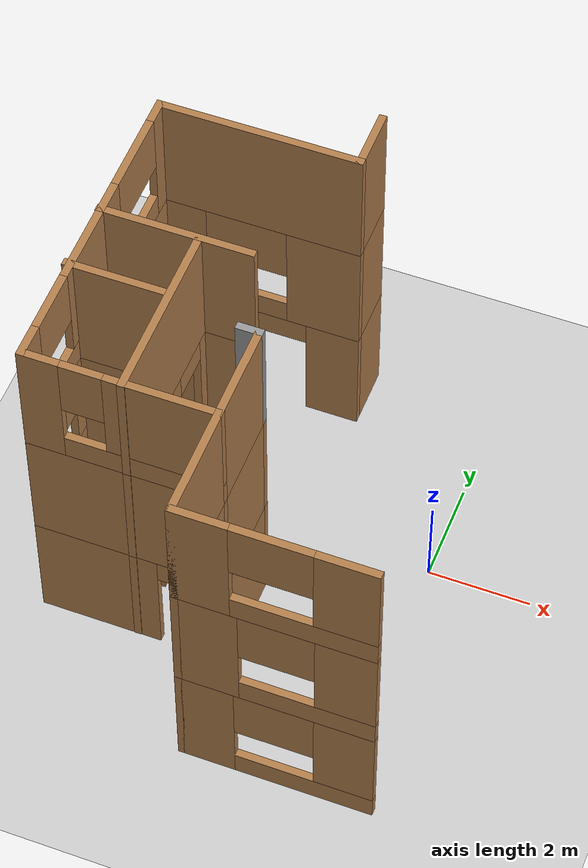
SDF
<sdf version="1.7">
 <world name="default">
  <model name="ground_plane">
   <static>1</static>
   <link name="link">
    <collision name="collision">
     <geometry><plane><normal>0 0 1</normal><size>100 100</size></plane></geometry>
     <surface>
      <contact><collide_bitmask>65535</collide_bitmask></contact>
      <friction><ode><mu>100</mu><mu2>50</mu2></ode></friction>
     </surface>
    </collision>
    <visual name="visual">
     <cast_shadows>0</cast_shadows>
     <geometry><plane><normal>0 0 1</normal><size>100 100</size></plane></geometry>
     <material>
      <script><uri>file://media/materials/scripts/gazebo.material</uri><name>Gazebo/Grey</name></script>
     </material>
    </visual>
   </link>
  </model>
  <model name="three_level_house">
   <pose>0.012851 -0.612237 0 0 -0 0</pose>
   <link name="Wall_119">
    <collision name="Wall_119_Collision">
     <geometry><box><size>1.25 0.15 2.5</size></box></geometry>
     <pose>0 0 1.25 0 -0 0</pose>
    </collision>
    <visual name="Wall_119_Visual">
     <pose>0 0 1.25 0 -0 0</pose>
     <geometry><box><size>1.25 0.15 2.5</size></box></geometry>
     <material>
      <script><uri>file://media/materials/scripts/gazebo.material</uri><name>Gazebo/Wood</name></script>
      <ambient>1 1 1 1</ambient>
     </material>
     <meta><layer>2</layer></meta>
    </visual>
    <pose>-2.6193 4.09938 5 0 -0 -1.5708</pose>
   </link>
   <link name="Wall_12">
    <collision name="Wall_12_Collision">
     <geometry><box><size>1.25 0.15 2.5</size></box></geometry>
     <pose>0 0 1.25 0 -0 0</pose>
    </collision>
    <visual name="Wall_12_Visual">
     <pose>0 0 1.25 0 -0 0</pose>
     <geometry><box><size>1.25 0.15 2.5</size></box></geometry>
     <material>
      <script><uri>file://media/materials/scripts/gazebo.material</uri><name>Gazebo/Wood</name></script>
      <ambient>1 1 1 1</ambient>
     </material>
     <meta><layer>0</layer></meta>
    </visual>
    <pose>-2.6193 4.09938 0 0 -0 -1.5708</pose>
   </link>
   <link name="Wall_120">
    <collision name="Wall_120_Collision">
     <geometry><box><size>4 0.15 2.5</size></box></geometry>
     <pose>0 0 1.25 0 -0 0</pose>
    </collision>
    <visual name="Wall_120_Visual">
     <pose>0 0 1.25 0 -0 0</pose>
     <geometry><box><size>4 0.15 2.5</size></box></geometry>
     <material>
      <script><uri>file://media/materials/scripts/gazebo.material</uri><name>Gazebo/Wood</name></script>
      <ambient>1 1 1 1</ambient>
     </material>
     <meta><layer>2</layer></meta>
    </visual>
    <pose>-4.54429 3.54938 5 0 -0 3.14159</pose>
   </link>
   <link name="Wall_121">
    <pose>-6.46929 0.499383 5 0 -0 -1.5708</pose>
    <visual name="Wall_121_Visual_0">
     <pose>-2.8616 0 1.25 0 -0 0</pose>
     <geometry><box><size>0.526794 0.15 2.5</size></box></geometry>
     <material>
      <script><uri>file://media/materials/scripts/gazebo.material</uri><name>Gazebo/Wood</name></script>
      <ambient>1 1 1 1</ambient>
     </material>
     <meta><layer>2</layer></meta>
    </visual>
    <collision name="Wall_121_Collision_0">
     <geometry><box><size>0.526794 0.15 2.5</size></box></geometry>
     <pose>-2.8616 0 1.25 0 -0 0</pose>
    </collision>
    <visual name="Wall_121_Visual_1">
     <pose>0.263397 0 0.25 0 -0 0</pose>
     <geometry><box><size>5.72321 0.15 0.5</size></box></geometry>
     <material>
      <script><uri>file://media/materials/scripts/gazebo.material</uri><name>Gazebo/Wood</name></script>
      <ambient>1 1 1 1</ambient>
     </material>
     <meta><layer>2</layer></meta>
    </visual>
    <collision name="Wall_121_Collision_1">
     <geometry><box><size>5.72321 0.15 0.5</size></box></geometry>
     <pose>0.263397 0 0.25 0 -0 0</pose>
    </collision>
    <visual name="Wall_121_Visual_2">
     <pose>0.130527 0 1.5 0 -0 0</pose>
     <geometry><box><size>2.25746 0.15 2</size></box></geometry>
     <material>
      <script><uri>file://media/materials/scripts/gazebo.material</uri><name>Gazebo/Wood</name></script>
      <ambient>1 1 1 1</ambient>
     </material>
     <meta><layer>2</layer></meta>
    </visual>
    <collision name="Wall_121_Collision_2">
     <geometry><box><size>2.25746 0.15 2</size></box></geometry>
     <pose>0.130527 0 1.5 0 -0 0</pose>
    </collision>
    <visual name="Wall_121_Visual_3">
     <pose>2.79213 0 1.5 0 -0 0</pose>
     <geometry><box><size>0.665741 0.15 2</size></box></geometry>
     <material>
      <script><uri>file://media/materials/scripts/gazebo.material</uri><name>Gazebo/Wood</name></script>
      <ambient>1 1 1 1</ambient>
     </material>
     <meta><layer>2</layer></meta>
    </visual>
    <collision name="Wall_121_Collision_3">
     <geometry><box><size>0.665741 0.15 2</size></box></geometry>
     <pose>2.79213 0 1.5 0 -0 0</pose>
    </collision>
    <visual name="Wall_121_Visual_4">
     <pose>-1.79821 0 1.9 0 -0 0</pose>
     <geometry><box><size>1.6 0.15 1.2</size></box></geometry>
     <material>
      <script><uri>file://media/materials/scripts/gazebo.material</uri><name>Gazebo/Wood</name></script>
      <ambient>1 1 1 1</ambient>
     </material>
     <meta><layer>2</layer></meta>
    </visual>
    <collision name="Wall_121_Collision_4">
     <geometry><box><size>1.6 0.15 1.2</size></box></geometry>
     <pose>-1.79821 0 1.9 0 -0 0</pose>
    </collision>
    <visual name="Wall_121_Visual_5">
     <pose>1.85926 0 1.9 0 -0 0</pose>
     <geometry><box><size>1.2 0.15 1.2</size></box></geometry>
     <material>
      <script><uri>file://media/materials/scripts/gazebo.material</uri><name>Gazebo/Wood</name></script>
      <ambient>1 1 1 1</ambient>
     </material>
     <meta><layer>2</layer></meta>
    </visual>
    <collision name="Wall_121_Collision_5">
     <geometry><box><size>1.2 0.15 1.2</size></box></geometry>
     <pose>1.85926 0 1.9 0 -0 0</pose>
    </collision>
   </link>
   <link name="Wall_122">
    <pose>-4.66929 -2.55062 5 0 -0 0</pose>
    <visual name="Wall_122_Visual_0">
     <pose>-1.48841 0 1.25 0 -0 0</pose>
     <geometry><box><size>0.773185 0.15 2.5</size></box></geometry>
     <material>
      <script><uri>file://media/materials/scripts/gazebo.material</uri><name>Gazebo/Wood</name></script>
      <ambient>1 1 1 1</ambient>
     </material>
     <meta><layer>2</layer></meta>
    </visual>
    <collision name="Wall_122_Collision_0">
     <geometry><box><size>0.773185 0.15 2.5</size></box></geometry>
     <pose>-1.48841 0 1.25 0 -0 0</pose>
    </collision>
    <visual name="Wall_122_Visual_1">
     <pose>0.386592 0 0.25 0 -0 0</pose>
     <geometry><box><size>2.97682 0.15 0.5</size></box></geometry>
     <material>
      <script><uri>file://media/materials/scripts/gazebo.material</uri><name>Gazebo/Wood</name></script>
      <ambient>1 1 1 1</ambient>
     </material>
     <meta><layer>2</layer></meta>
    </visual>
    <collision name="Wall_122_Collision_1">
     <geometry><box><size>2.97682 0.15 0.5</size></box></geometry>
     <pose>0.386592 0 0.25 0 -0 0</pose>
    </collision>
    <visual name="Wall_122_Visual_2">
     <pose>0.786592 0 1.5 0 -0 0</pose>
     <geometry><box><size>2.17681 0.15 2</size></box></geometry>
     <material>
      <script><uri>file://media/materials/scripts/gazebo.material</uri><name>Gazebo/Wood</name></script>
      <ambient>1 1 1 1</ambient>
     </material>
     <meta><layer>2</layer></meta>
    </visual>
    <collision name="Wall_122_Collision_2">
     <geometry><box><size>2.17681 0.15 2</size></box></geometry>
     <pose>0.786592 0 1.5 0 -0 0</pose>
    </collision>
    <visual name="Wall_122_Visual_3">
     <pose>-0.701815 0 1.9 0 -0 0</pose>
     <geometry><box><size>0.8 0.15 1.2</size></box></geometry>
     <material>
      <script><uri>file://media/materials/scripts/gazebo.material</uri><name>Gazebo/Wood</name></script>
      <ambient>1 1 1 1</ambient>
     </material>
     <meta><layer>2</layer></meta>
    </visual>
    <collision name="Wall_122_Collision_3">
     <geometry><box><size>0.8 0.15 1.2</size></box></geometry>
     <pose>-0.701815 0 1.9 0 -0 0</pose>
    </collision>
   </link>
   <link name="Wall_123">
    <collision name="Wall_123_Collision">
     <geometry><box><size>2 0.15 2.5</size></box></geometry>
     <pose>0 0 1.25 0 -0 0</pose>
    </collision>
    <visual name="Wall_123_Visual">
     <pose>0 0 1.25 0 -0 0</pose>
     <geometry><box><size>2 0.15 2.5</size></box></geometry>
     <material>
      <script><uri>file://media/materials/scripts/gazebo.material</uri><name>Gazebo/Wood</name></script>
      <ambient>1 1 1 1</ambient>
     </material>
     <meta><layer>2</layer></meta>
    </visual>
    <pose>-2.8693 -1.62562 5 0 -0 1.5708</pose>
   </link>
   <link name="Wall_124">
    <collision name="Wall_124_Collision">
     <geometry><box><size>0.5 0.15 2.5</size></box></geometry>
     <pose>0 0 1.25 0 -0 0</pose>
    </collision>
    <visual name="Wall_124_Visual">
     <pose>0 0 1.25 0 -0 0</pose>
     <geometry><box><size>0.5 0.15 2.5</size></box></geometry>
     <material>
      <script><uri>file://media/materials/scripts/gazebo.material</uri><name>Gazebo/Grey</name></script>
      <ambient>1 1 1 1</ambient>
     </material>
     <meta><layer>2</layer></meta>
    </visual>
    <pose>-3.04429 -0.700617 5 0 -0 3.14159</pose>
   </link>
   <link name="Wall_125">
    <collision name="Wall_125_Collision">
     <geometry><box><size>3 0.15 2.5</size></box></geometry>
     <pose>0 0 1.25 0 -0 0</pose>
    </collision>
    <visual name="Wall_125_Visual">
     <pose>0 0 1.25 0 -0 0</pose>
     <geometry><box><size>3 0.15 2.5</size></box></geometry>
     <material>
      <script><uri>file://media/materials/scripts/gazebo.material</uri><name>Gazebo/Wood</name></script>
      <ambient>1 1 1 1</ambient>
     </material>
     <meta><layer>2</layer></meta>
    </visual>
    <pose>-5.06058 0.88243 5 0 -0 0</pose>
   </link>
   <link name="Wall_126">
    <collision name="Wall_126_Collision">
     <geometry><box><size>3.5 0.15 2.5</size></box></geometry>
     <pose>0 0 1.25 0 -0 0</pose>
    </collision>
    <visual name="Wall_126_Visual">
     <pose>0 0 1.25 0 -0 0</pose>
     <geometry><box><size>3.5 0.15 2.5</size></box></geometry>
     <material>
      <script><uri>file://media/materials/scripts/gazebo.material</uri><name>Gazebo/Wood</name></script>
      <ambient>1 1 1 1</ambient>
     </material>
     <meta><layer>2</layer></meta>
    </visual>
    <pose>-4.61502 -0.8845 5 0 -0 -1.5708</pose>
   </link>
   <link name="Wall_127">
    <collision name="Wall_127_Collision">
     <geometry><box><size>2 0.15 2.5</size></box></geometry>
     <pose>0 0 1.25 0 -0 0</pose>
    </collision>
    <visual name="Wall_127_Visual">
     <pose>0 0 1.25 0 -0 0</pose>
     <geometry><box><size>2 0.15 2.5</size></box></geometry>
     <material>
      <script><uri>file://media/materials/scripts/gazebo.material</uri><name>Gazebo/Wood</name></script>
      <ambient>1 1 1 1</ambient>
     </material>
     <meta><layer>2</layer></meta>
    </visual>
    <pose>-5.60944 -0.465179 5 0 -0 0</pose>
   </link>
   <link name="Wall_128">
    <collision name="Wall_128_Collision">
     <geometry><box><size>2.25 0.15 2.5</size></box></geometry>
     <pose>0 0 1.25 0 -0 0</pose>
    </collision>
    <visual name="Wall_128_Visual">
     <pose>0 0 1.25 0 -0 0</pose>
     <geometry><box><size>2.25 0.15 2.5</size></box></geometry>
     <material>
      <script><uri>file://media/materials/scripts/gazebo.material</uri><name>Gazebo/Wood</name></script>
      <ambient>1 1 1 1</ambient>
     </material>
     <meta><layer>2</layer></meta>
    </visual>
    <pose>-2.8693 -3.60062 5 0 -0 -1.5708</pose>
   </link>
   <link name="Wall_129">
    <pose>-1.0693 -4.65062 5 0 -0 0</pose>
    <visual name="Wall_129_Visual_0">
     <pose>-1.32896 0 1.25 0 -0 0</pose>
     <geometry><box><size>1.09209 0.15 2.5</size></box></geometry>
     <material>
      <script><uri>file://media/materials/scripts/gazebo.material</uri><name>Gazebo/Wood</name></script>
      <ambient>1 1 1 1</ambient>
     </material>
     <meta><layer>2</layer></meta>
    </visual>
    <collision name="Wall_129_Collision_0">
     <geometry><box><size>1.09209 0.15 2.5</size></box></geometry>
     <pose>-1.32896 0 1.25 0 -0 0</pose>
    </collision>
    <visual name="Wall_129_Visual_1">
     <pose>0.546045 0 0.25 0 -0 0</pose>
     <geometry><box><size>2.65791 0.15 0.5</size></box></geometry>
     <material>
      <script><uri>file://media/materials/scripts/gazebo.material</uri><name>Gazebo/Wood</name></script>
      <ambient>1 1 1 1</ambient>
     </material>
     <meta><layer>2</layer></meta>
    </visual>
    <collision name="Wall_129_Collision_1">
     <geometry><box><size>2.65791 0.15 0.5</size></box></geometry>
     <pose>0.546045 0 0.25 0 -0 0</pose>
    </collision>
    <visual name="Wall_129_Visual_2">
     <pose>1.29604 0 1.5 0 -0 0</pose>
     <geometry><box><size>1.15791 0.15 2</size></box></geometry>
     <material>
      <script><uri>file://media/materials/scripts/gazebo.material</uri><name>Gazebo/Wood</name></script>
      <ambient>1 1 1 1</ambient>
     </material>
     <meta><layer>2</layer></meta>
    </visual>
    <collision name="Wall_129_Collision_2">
     <geometry><box><size>1.15791 0.15 2</size></box></geometry>
     <pose>1.29604 0 1.5 0 -0 0</pose>
    </collision>
    <visual name="Wall_129_Visual_3">
     <pose>-0.03291 0 1.9 0 -0 0</pose>
     <geometry><box><size>1.5 0.15 1.2</size></box></geometry>
     <material>
      <script><uri>file://media/materials/scripts/gazebo.material</uri><name>Gazebo/Wood</name></script>
      <ambient>1 1 1 1</ambient>
     </material>
     <meta><layer>2</layer></meta>
    </visual>
    <collision name="Wall_129_Collision_3">
     <geometry><box><size>1.5 0.15 1.2</size></box></geometry>
     <pose>-0.03291 0 1.9 0 -0 0</pose>
    </collision>
   </link>
   <link name="Wall_13">
    <pose>-4.54429 3.54938 0 0 -0 3.14159</pose>
    <visual name="Wall_13_Visual_0">
     <pose>-1.46593 0 1.25 0 -0 0</pose>
     <geometry><box><size>1.06814 0.15 2.5</size></box></geometry>
     <material>
      <script><uri>file://media/materials/scripts/gazebo.material</uri><name>Gazebo/Wood</name></script>
      <ambient>1 1 1 1</ambient>
     </material>
     <meta><layer>0</layer></meta>
    </visual>
    <collision name="Wall_13_Collision_0">
     <geometry><box><size>1.06814 0.15 2.5</size></box></geometry>
     <pose>-1.46593 0 1.25 0 -0 0</pose>
    </collision>
    <visual name="Wall_13_Visual_1">
     <pose>1.28407 0 1.25 0 -0 0</pose>
     <geometry><box><size>1.43186 0.15 2.5</size></box></geometry>
     <material>
      <script><uri>file://media/materials/scripts/gazebo.material</uri><name>Gazebo/Wood</name></script>
      <ambient>1 1 1 1</ambient>
     </material>
     <meta><layer>0</layer></meta>
    </visual>
    <collision name="Wall_13_Collision_1">
     <geometry><box><size>1.43186 0.15 2.5</size></box></geometry>
     <pose>1.28407 0 1.25 0 -0 0</pose>
    </collision>
    <visual name="Wall_13_Visual_2">
     <pose>-0.181855 0 2.25 0 -0 0</pose>
     <geometry><box><size>1.5 0.15 0.5</size></box></geometry>
     <material>
      <script><uri>file://media/materials/scripts/gazebo.material</uri><name>Gazebo/Wood</name></script>
      <ambient>1 1 1 1</ambient>
     </material>
     <meta><layer>0</layer></meta>
    </visual>
    <collision name="Wall_13_Collision_2">
     <geometry><box><size>1.5 0.15 0.5</size></box></geometry>
     <pose>-0.181855 0 2.25 0 -0 0</pose>
    </collision>
   </link>
   <link name="Wall_14">
    <pose>-6.46929 0.499383 0 0 -0 -1.5708</pose>
    <visual name="Wall_14_Visual_0">
     <pose>-2.76585 0 1.25 0 -0 0</pose>
     <geometry><box><size>0.718309 0.15 2.5</size></box></geometry>
     <material>
      <script><uri>file://media/materials/scripts/gazebo.material</uri><name>Gazebo/Wood</name></script>
      <ambient>1 1 1 1</ambient>
     </material>
     <meta><layer>0</layer></meta>
    </visual>
    <collision name="Wall_14_Collision_0">
     <geometry><box><size>0.718309 0.15 2.5</size></box></geometry>
     <pose>-2.76585 0 1.25 0 -0 0</pose>
    </collision>
    <visual name="Wall_14_Visual_1">
     <pose>0.359155 0 0.25 0 -0 0</pose>
     <geometry><box><size>5.53169 0.15 0.5</size></box></geometry>
     <material>
      <script><uri>file://media/materials/scripts/gazebo.material</uri><name>Gazebo/Wood</name></script>
      <ambient>1 1 1 1</ambient>
     </material>
     <meta><layer>0</layer></meta>
    </visual>
    <collision name="Wall_14_Collision_1">
     <geometry><box><size>5.53169 0.15 0.5</size></box></geometry>
     <pose>0.359155 0 0.25 0 -0 0</pose>
    </collision>
    <visual name="Wall_14_Visual_2">
     <pose>1.10915 0 1.5 0 -0 0</pose>
     <geometry><box><size>4.03169 0.15 2</size></box></geometry>
     <material>
      <script><uri>file://media/materials/scripts/gazebo.material</uri><name>Gazebo/Wood</name></script>
      <ambient>1 1 1 1</ambient>
     </material>
     <meta><layer>0</layer></meta>
    </visual>
    <collision name="Wall_14_Collision_2">
     <geometry><box><size>4.03169 0.15 2</size></box></geometry>
     <pose>1.10915 0 1.5 0 -0 0</pose>
    </collision>
    <visual name="Wall_14_Visual_3">
     <pose>-1.65669 0 2 0 -0 0</pose>
     <geometry><box><size>1.5 0.15 1</size></box></geometry>
     <material>
      <script><uri>file://media/materials/scripts/gazebo.material</uri><name>Gazebo/Wood</name></script>
      <ambient>1 1 1 1</ambient>
     </material>
     <meta><layer>0</layer></meta>
    </visual>
    <collision name="Wall_14_Collision_3">
     <geometry><box><size>1.5 0.15 1</size></box></geometry>
     <pose>-1.65669 0 2 0 -0 0</pose>
    </collision>
   </link>
   <link name="Wall_15">
    <pose>-4.66929 -2.55062 0 0 -0 0</pose>
    <visual name="Wall_15_Visual_0">
     <pose>-0.679452 0 1.25 0 -0 0</pose>
     <geometry><box><size>2.3911 0.15 2.5</size></box></geometry>
     <material>
      <script><uri>file://media/materials/scripts/gazebo.material</uri><name>Gazebo/Wood</name></script>
      <ambient>1 1 1 1</ambient>
     </material>
     <meta><layer>0</layer></meta>
    </visual>
    <collision name="Wall_15_Collision_0">
     <geometry><box><size>2.3911 0.15 2.5</size></box></geometry>
     <pose>-0.679452 0 1.25 0 -0 0</pose>
    </collision>
    <visual name="Wall_15_Visual_1">
     <pose>1.64555 0 1.25 0 -0 0</pose>
     <geometry><box><size>0.458904 0.15 2.5</size></box></geometry>
     <material>
      <script><uri>file://media/materials/scripts/gazebo.material</uri><name>Gazebo/Wood</name></script>
      <ambient>1 1 1 1</ambient>
     </material>
     <meta><layer>0</layer></meta>
    </visual>
    <collision name="Wall_15_Collision_1">
     <geometry><box><size>0.458904 0.15 2.5</size></box></geometry>
     <pose>1.64555 0 1.25 0 -0 0</pose>
    </collision>
    <visual name="Wall_15_Visual_2">
     <pose>0.966096 0 2.25 0 -0 0</pose>
     <geometry><box><size>0.9 0.15 0.5</size></box></geometry>
     <material>
      <script><uri>file://media/materials/scripts/gazebo.material</uri><name>Gazebo/Wood</name></script>
      <ambient>1 1 1 1</ambient>
     </material>
     <meta><layer>0</layer></meta>
    </visual>
    <collision name="Wall_15_Collision_2">
     <geometry><box><size>0.9 0.15 0.5</size></box></geometry>
     <pose>0.966096 0 2.25 0 -0 0</pose>
    </collision>
   </link>
   <link name="Wall_16">
    <collision name="Wall_16_Collision">
     <geometry><box><size>2 0.15 2.5</size></box></geometry>
     <pose>0 0 1.25 0 -0 0</pose>
    </collision>
    <visual name="Wall_16_Visual">
     <pose>0 0 1.25 0 -0 0</pose>
     <geometry><box><size>2 0.15 2.5</size></box></geometry>
     <material>
      <script><uri>file://media/materials/scripts/gazebo.material</uri><name>Gazebo/Wood</name></script>
      <ambient>1 1 1 1</ambient>
     </material>
     <meta><layer>0</layer></meta>
    </visual>
    <pose>-2.8693 -1.62562 0 0 -0 1.5708</pose>
   </link>
   <link name="Wall_17">
    <collision name="Wall_17_Collision">
     <geometry><box><size>0.5 0.15 2.5</size></box></geometry>
     <pose>0 0 1.25 0 -0 0</pose>
    </collision>
    <visual name="Wall_17_Visual">
     <pose>0 0 1.25 0 -0 0</pose>
     <geometry><box><size>0.5 0.15 2.5</size></box></geometry>
     <material>
      <script><uri>file://media/materials/scripts/gazebo.material</uri><name>Gazebo/Wood</name></script>
      <ambient>1 1 1 1</ambient>
     </material>
     <meta><layer>0</layer></meta>
    </visual>
    <pose>-3.04429 -0.700617 0 0 -0 3.14159</pose>
   </link>
   <link name="Wall_19">
    <collision name="Wall_19_Collision">
     <geometry><box><size>3 0.15 2.5</size></box></geometry>
     <pose>0 0 1.25 0 -0 0</pose>
    </collision>
    <visual name="Wall_19_Visual">
     <pose>0 0 1.25 0 -0 0</pose>
     <geometry><box><size>3 0.15 2.5</size></box></geometry>
     <material>
      <script><uri>file://media/materials/scripts/gazebo.material</uri><name>Gazebo/Wood</name></script>
      <ambient>1 1 1 1</ambient>
     </material>
     <meta><layer>0</layer></meta>
    </visual>
    <pose>-5.06058 0.88243 0 0 -0 0</pose>
   </link>
   <link name="Wall_21">
    <pose>-4.61502 -0.8845 0 0 -0 -1.5708</pose>
    <visual name="Wall_21_Visual_0">
     <pose>-1.61468 0 1.25 0 -0 0</pose>
     <geometry><box><size>0.270647 0.15 2.5</size></box></geometry>
     <material>
      <script><uri>file://media/materials/scripts/gazebo.material</uri><name>Gazebo/Wood</name></script>
      <ambient>1 1 1 1</ambient>
     </material>
     <meta><layer>0</layer></meta>
    </visual>
    <collision name="Wall_21_Collision_0">
     <geometry><box><size>0.270647 0.15 2.5</size></box></geometry>
     <pose>-1.61468 0 1.25 0 -0 0</pose>
    </collision>
    <visual name="Wall_21_Visual_1">
     <pose>0.011306 0 1.25 0 -0 0</pose>
     <geometry><box><size>1.18132 0.15 2.5</size></box></geometry>
     <material>
      <script><uri>file://media/materials/scripts/gazebo.material</uri><name>Gazebo/Wood</name></script>
      <ambient>1 1 1 1</ambient>
     </material>
     <meta><layer>0</layer></meta>
    </visual>
    <collision name="Wall_21_Collision_1">
     <geometry><box><size>1.18132 0.15 2.5</size></box></geometry>
     <pose>0.011306 0 1.25 0 -0 0</pose>
    </collision>
    <visual name="Wall_21_Visual_2">
     <pose>1.62598 0 1.25 0 -0 0</pose>
     <geometry><box><size>0.248036 0.15 2.5</size></box></geometry>
     <material>
      <script><uri>file://media/materials/scripts/gazebo.material</uri><name>Gazebo/Wood</name></script>
      <ambient>1 1 1 1</ambient>
     </material>
     <meta><layer>0</layer></meta>
    </visual>
    <collision name="Wall_21_Collision_2">
     <geometry><box><size>0.248036 0.15 2.5</size></box></geometry>
     <pose>1.62598 0 1.25 0 -0 0</pose>
    </collision>
    <visual name="Wall_21_Visual_3">
     <pose>-1.02935 0 2.25 0 -0 0</pose>
     <geometry><box><size>0.9 0.15 0.5</size></box></geometry>
     <material>
      <script><uri>file://media/materials/scripts/gazebo.material</uri><name>Gazebo/Wood</name></script>
      <ambient>1 1 1 1</ambient>
     </material>
     <meta><layer>0</layer></meta>
    </visual>
    <collision name="Wall_21_Collision_3">
     <geometry><box><size>0.9 0.15 0.5</size></box></geometry>
     <pose>-1.02935 0 2.25 0 -0 0</pose>
    </collision>
    <visual name="Wall_21_Visual_4">
     <pose>1.05196 0 2.25 0 -0 0</pose>
     <geometry><box><size>0.9 0.15 0.5</size></box></geometry>
     <material>
      <script><uri>file://media/materials/scripts/gazebo.material</uri><name>Gazebo/Wood</name></script>
      <ambient>1 1 1 1</ambient>
     </material>
     <meta><layer>0</layer></meta>
    </visual>
    <collision name="Wall_21_Collision_4">
     <geometry><box><size>0.9 0.15 0.5</size></box></geometry>
     <pose>1.05196 0 2.25 0 -0 0</pose>
    </collision>
   </link>
   <link name="Wall_23">
    <collision name="Wall_23_Collision">
     <geometry><box><size>2 0.15 2.5</size></box></geometry>
     <pose>0 0 1.25 0 -0 0</pose>
    </collision>
    <visual name="Wall_23_Visual">
     <pose>0 0 1.25 0 -0 0</pose>
     <geometry><box><size>2 0.15 2.5</size></box></geometry>
     <material>
      <script><uri>file://media/materials/scripts/gazebo.material</uri><name>Gazebo/Wood</name></script>
      <ambient>1 1 1 1</ambient>
     </material>
     <meta><layer>0</layer></meta>
    </visual>
    <pose>-5.60945 -0.465179 0 0 -0 0</pose>
   </link>
   <link name="Wall_25">
    <collision name="Wall_25_Collision">
     <geometry><box><size>2.25 0.15 2.5</size></box></geometry>
     <pose>0 0 1.25 0 -0 0</pose>
    </collision>
    <visual name="Wall_25_Visual">
     <pose>0 0 1.25 0 -0 0</pose>
     <geometry><box><size>2.25 0.15 2.5</size></box></geometry>
     <material>
      <script><uri>file://media/materials/scripts/gazebo.material</uri><name>Gazebo/Wood</name></script>
      <ambient>1 1 1 1</ambient>
     </material>
     <meta><layer>0</layer></meta>
    </visual>
    <pose>-2.8693 -3.60062 0 0 -0 -1.5708</pose>
   </link>
   <link name="Wall_26">
    <pose>-1.0693 -4.65062 0 0 -0 0</pose>
    <visual name="Wall_26_Visual_0">
     <pose>-1.31897 0 1.25 0 -0 0</pose>
     <geometry><box><size>1.11206 0.15 2.5</size></box></geometry>
     <material>
      <script><uri>file://media/materials/scripts/gazebo.material</uri><name>Gazebo/Wood</name></script>
      <ambient>1 1 1 1</ambient>
     </material>
     <meta><layer>0</layer></meta>
    </visual>
    <collision name="Wall_26_Collision_0">
     <geometry><box><size>1.11206 0.15 2.5</size></box></geometry>
     <pose>-1.31897 0 1.25 0 -0 0</pose>
    </collision>
    <visual name="Wall_26_Visual_1">
     <pose>0.556028 0 0.25 0 -0 0</pose>
     <geometry><box><size>2.63795 0.15 0.5</size></box></geometry>
     <material>
      <script><uri>file://media/materials/scripts/gazebo.material</uri><name>Gazebo/Wood</name></script>
      <ambient>1 1 1 1</ambient>
     </material>
     <meta><layer>0</layer></meta>
    </visual>
    <collision name="Wall_26_Collision_1">
     <geometry><box><size>2.63795 0.15 0.5</size></box></geometry>
     <pose>0.556028 0 0.25 0 -0 0</pose>
    </collision>
    <visual name="Wall_26_Visual_2">
     <pose>1.30603 0 1.5 0 -0 0</pose>
     <geometry><box><size>1.13794 0.15 2</size></box></geometry>
     <material>
      <script><uri>file://media/materials/scripts/gazebo.material</uri><name>Gazebo/Wood</name></script>
      <ambient>1 1 1 1</ambient>
     </material>
     <meta><layer>0</layer></meta>
    </visual>
    <collision name="Wall_26_Collision_2">
     <geometry><box><size>1.13794 0.15 2</size></box></geometry>
     <pose>1.30603 0 1.5 0 -0 0</pose>
    </collision>
    <visual name="Wall_26_Visual_3">
     <pose>-0.012945 0 1.9 0 -0 0</pose>
     <geometry><box><size>1.5 0.15 1.2</size></box></geometry>
     <material>
      <script><uri>file://media/materials/scripts/gazebo.material</uri><name>Gazebo/Wood</name></script>
      <ambient>1 1 1 1</ambient>
     </material>
     <meta><layer>0</layer></meta>
    </visual>
    <collision name="Wall_26_Collision_3">
     <geometry><box><size>1.5 0.15 1.2</size></box></geometry>
     <pose>-0.012945 0 1.9 0 -0 0</pose>
    </collision>
   </link>
   <link name="Wall_69">
    <collision name="Wall_69_Collision">
     <geometry><box><size>1.25 0.15 2.5</size></box></geometry>
     <pose>0 0 1.25 0 -0 0</pose>
    </collision>
    <visual name="Wall_69_Visual">
     <pose>0 0 1.25 0 -0 0</pose>
     <geometry><box><size>1.25 0.15 2.5</size></box></geometry>
     <material>
      <script><uri>file://media/materials/scripts/gazebo.material</uri><name>Gazebo/Wood</name></script>
      <ambient>1 1 1 1</ambient>
     </material>
     <meta><layer>1</layer></meta>
    </visual>
    <pose>-2.6193 4.09938 2.5 0 -0 -1.5708</pose>
   </link>
   <link name="Wall_70">
    <pose>-4.54429 3.54938 2.5 0 -0 3.14159</pose>
    <visual name="Wall_70_Visual_0">
     <pose>-1.26942 0 1.25 0 -0 0</pose>
     <geometry><box><size>1.46116 0.15 2.5</size></box></geometry>
     <material>
      <script><uri>file://media/materials/scripts/gazebo.material</uri><name>Gazebo/Wood</name></script>
      <ambient>1 1 1 1</ambient>
     </material>
     <meta><layer>1</layer></meta>
    </visual>
    <collision name="Wall_70_Collision_0">
     <geometry><box><size>1.46116 0.15 2.5</size></box></geometry>
     <pose>-1.26942 0 1.25 0 -0 0</pose>
    </collision>
    <visual name="Wall_70_Visual_1">
     <pose>0.730578 0 0.25 0 -0 0</pose>
     <geometry><box><size>2.53884 0.15 0.5</size></box></geometry>
     <material>
      <script><uri>file://media/materials/scripts/gazebo.material</uri><name>Gazebo/Wood</name></script>
      <ambient>1 1 1 1</ambient>
     </material>
     <meta><layer>1</layer></meta>
    </visual>
    <collision name="Wall_70_Collision_1">
     <geometry><box><size>2.53884 0.15 0.5</size></box></geometry>
     <pose>0.730578 0 0.25 0 -0 0</pose>
    </collision>
    <visual name="Wall_70_Visual_2">
     <pose>1.53058 0 1.5 0 -0 0</pose>
     <geometry><box><size>0.938843 0.15 2</size></box></geometry>
     <material>
      <script><uri>file://media/materials/scripts/gazebo.material</uri><name>Gazebo/Wood</name></script>
      <ambient>1 1 1 1</ambient>
     </material>
     <meta><layer>1</layer></meta>
    </visual>
    <collision name="Wall_70_Collision_2">
     <geometry><box><size>0.938843 0.15 2</size></box></geometry>
     <pose>1.53058 0 1.5 0 -0 0</pose>
    </collision>
    <visual name="Wall_70_Visual_3">
     <pose>0.261157 0 1.9 0 -0 0</pose>
     <geometry><box><size>1.6 0.15 1.2</size></box></geometry>
     <material>
      <script><uri>file://media/materials/scripts/gazebo.material</uri><name>Gazebo/Wood</name></script>
      <ambient>1 1 1 1</ambient>
     </material>
     <meta><layer>1</layer></meta>
    </visual>
    <collision name="Wall_70_Collision_3">
     <geometry><box><size>1.6 0.15 1.2</size></box></geometry>
     <pose>0.261157 0 1.9 0 -0 0</pose>
    </collision>
   </link>
   <link name="Wall_71">
    <pose>-6.46929 0.499383 2.5 0 -0 -1.5708</pose>
    <visual name="Wall_71_Visual_0">
     <pose>-2.79087 0 1.25 0 -0 0</pose>
     <geometry><box><size>0.668267 0.15 2.5</size></box></geometry>
     <material>
      <script><uri>file://media/materials/scripts/gazebo.material</uri><name>Gazebo/Wood</name></script>
      <ambient>1 1 1 1</ambient>
     </material>
     <meta><layer>1</layer></meta>
    </visual>
    <collision name="Wall_71_Collision_0">
     <geometry><box><size>0.668267 0.15 2.5</size></box></geometry>
     <pose>-2.79087 0 1.25 0 -0 0</pose>
    </collision>
    <visual name="Wall_71_Visual_1">
     <pose>0.334133 0 0.25 0 -0 0</pose>
     <geometry><box><size>5.58173 0.15 0.5</size></box></geometry>
     <material>
      <script><uri>file://media/materials/scripts/gazebo.material</uri><name>Gazebo/Wood</name></script>
      <ambient>1 1 1 1</ambient>
     </material>
     <meta><layer>1</layer></meta>
    </visual>
    <collision name="Wall_71_Collision_1">
     <geometry><box><size>5.58173 0.15 0.5</size></box></geometry>
     <pose>0.334133 0 0.25 0 -0 0</pose>
    </collision>
    <visual name="Wall_71_Visual_2">
     <pose>-0.560248 0 1.5 0 -0 0</pose>
     <geometry><box><size>0.792971 0.15 2</size></box></geometry>
     <material>
      <script><uri>file://media/materials/scripts/gazebo.material</uri><name>Gazebo/Wood</name></script>
      <ambient>1 1 1 1</ambient>
     </material>
     <meta><layer>1</layer></meta>
    </visual>
    <collision name="Wall_71_Collision_2">
     <geometry><box><size>0.792971 0.15 2</size></box></geometry>
     <pose>-0.560248 0 1.5 0 -0 0</pose>
    </collision>
    <visual name="Wall_71_Visual_3">
     <pose>0.998027 0 1.5 0 -0 0</pose>
     <geometry><box><size>0.723579 0.15 2</size></box></geometry>
     <material>
      <script><uri>file://media/materials/scripts/gazebo.material</uri><name>Gazebo/Wood</name></script>
      <ambient>1 1 1 1</ambient>
     </material>
     <meta><layer>1</layer></meta>
    </visual>
    <collision name="Wall_71_Collision_3">
     <geometry><box><size>0.723579 0.15 2</size></box></geometry>
     <pose>0.998027 0 1.5 0 -0 0</pose>
    </collision>
    <visual name="Wall_71_Visual_4">
     <pose>2.99241 0 1.5 0 -0 0</pose>
     <geometry><box><size>0.265183 0.15 2</size></box></geometry>
     <material>
      <script><uri>file://media/materials/scripts/gazebo.material</uri><name>Gazebo/Wood</name></script>
      <ambient>1 1 1 1</ambient>
     </material>
     <meta><layer>1</layer></meta>
    </visual>
    <collision name="Wall_71_Collision_4">
     <geometry><box><size>0.265183 0.15 2</size></box></geometry>
     <pose>2.99241 0 1.5 0 -0 0</pose>
    </collision>
    <visual name="Wall_71_Visual_5">
     <pose>-1.70673 0 1.9 0 -0 0</pose>
     <geometry><box><size>1.5 0.15 1.2</size></box></geometry>
     <material>
      <script><uri>file://media/materials/scripts/gazebo.material</uri><name>Gazebo/Wood</name></script>
      <ambient>1 1 1 1</ambient>
     </material>
     <meta><layer>1</layer></meta>
    </visual>
    <collision name="Wall_71_Collision_5">
     <geometry><box><size>1.5 0.15 1.2</size></box></geometry>
     <pose>-1.70673 0 1.9 0 -0 0</pose>
    </collision>
    <visual name="Wall_71_Visual_6">
     <pose>0.236238 0 1.9 0 -0 0</pose>
     <geometry><box><size>0.8 0.15 1.2</size></box></geometry>
     <material>
      <script><uri>file://media/materials/scripts/gazebo.material</uri><name>Gazebo/Wood</name></script>
      <ambient>1 1 1 1</ambient>
     </material>
     <meta><layer>1</layer></meta>
    </visual>
    <collision name="Wall_71_Collision_6">
     <geometry><box><size>0.8 0.15 1.2</size></box></geometry>
     <pose>0.236238 0 1.9 0 -0 0</pose>
    </collision>
    <visual name="Wall_71_Visual_7">
     <pose>2.10982 0 1.9 0 -0 0</pose>
     <geometry><box><size>1.5 0.15 1.2</size></box></geometry>
     <material>
      <script><uri>file://media/materials/scripts/gazebo.material</uri><name>Gazebo/Wood</name></script>
      <ambient>1 1 1 1</ambient>
     </material>
     <meta><layer>1</layer></meta>
    </visual>
    <collision name="Wall_71_Collision_7">
     <geometry><box><size>1.5 0.15 1.2</size></box></geometry>
     <pose>2.10982 0 1.9 0 -0 0</pose>
    </collision>
   </link>
   <link name="Wall_72">
    <collision name="Wall_72_Collision">
     <geometry><box><size>3.75 0.15 2.5</size></box></geometry>
     <pose>0 0 1.25 0 -0 0</pose>
    </collision>
    <visual name="Wall_72_Visual">
     <pose>0 0 1.25 0 -0 0</pose>
     <geometry><box><size>3.75 0.15 2.5</size></box></geometry>
     <material>
      <script><uri>file://media/materials/scripts/gazebo.material</uri><name>Gazebo/Wood</name></script>
      <ambient>1 1 1 1</ambient>
     </material>
     <meta><layer>1</layer></meta>
    </visual>
    <pose>-4.66929 -2.55062 2.5 0 -0 0</pose>
   </link>
   <link name="Wall_73">
    <collision name="Wall_73_Collision">
     <geometry><box><size>2 0.15 2.5</size></box></geometry>
     <pose>0 0 1.25 0 -0 0</pose>
    </collision>
    <visual name="Wall_73_Visual">
     <pose>0 0 1.25 0 -0 0</pose>
     <geometry><box><size>2 0.15 2.5</size></box></geometry>
     <material>
      <script><uri>file://media/materials/scripts/gazebo.material</uri><name>Gazebo/Wood</name></script>
      <ambient>1 1 1 1</ambient>
     </material>
     <meta><layer>1</layer></meta>
    </visual>
    <pose>-2.8693 -1.62562 2.5 0 -0 1.5708</pose>
   </link>
   <link name="Wall_74">
    <collision name="Wall_74_Collision">
     <geometry><box><size>0.5 0.15 2.5</size></box></geometry>
     <pose>0 0 1.25 0 -0 0</pose>
    </collision>
    <visual name="Wall_74_Visual">
     <pose>0 0 1.25 0 -0 0</pose>
     <geometry><box><size>0.5 0.15 2.5</size></box></geometry>
     <material>
      <script><uri>file://media/materials/scripts/gazebo.material</uri><name>Gazebo/Wood</name></script>
      <ambient>1 1 1 1</ambient>
     </material>
     <meta><layer>1</layer></meta>
    </visual>
    <pose>-3.04429 -0.700617 2.5 0 -0 3.14159</pose>
   </link>
   <link name="Wall_75">
    <collision name="Wall_75_Collision">
     <geometry><box><size>3 0.15 2.5</size></box></geometry>
     <pose>0 0 1.25 0 -0 0</pose>
    </collision>
    <visual name="Wall_75_Visual">
     <pose>0 0 1.25 0 -0 0</pose>
     <geometry><box><size>3 0.15 2.5</size></box></geometry>
     <material>
      <script><uri>file://media/materials/scripts/gazebo.material</uri><name>Gazebo/Wood</name></script>
      <ambient>1 1 1 1</ambient>
     </material>
     <meta><layer>1</layer></meta>
    </visual>
    <pose>-5.06058 0.88243 2.5 0 -0 0</pose>
   </link>
   <link name="Wall_76">
    <pose>-4.61502 -0.8845 2.5 0 -0 -1.5708</pose>
    <visual name="Wall_76_Visual_0">
     <pose>-1.59424 0 1.25 0 -0 0</pose>
     <geometry><box><size>0.311513 0.15 2.5</size></box></geometry>
     <material>
      <script><uri>file://media/materials/scripts/gazebo.material</uri><name>Gazebo/Wood</name></script>
      <ambient>1 1 1 1</ambient>
     </material>
     <meta><layer>1</layer></meta>
    </visual>
    <collision name="Wall_76_Collision_0">
     <geometry><box><size>0.311513 0.15 2.5</size></box></geometry>
     <pose>-1.59424 0 1.25 0 -0 0</pose>
    </collision>
    <visual name="Wall_76_Visual_1">
     <pose>-0.258707 0 1.25 0 -0 0</pose>
     <geometry><box><size>0.559559 0.15 2.5</size></box></geometry>
     <material>
      <script><uri>file://media/materials/scripts/gazebo.material</uri><name>Gazebo/Wood</name></script>
      <ambient>1 1 1 1</ambient>
     </material>
     <meta><layer>1</layer></meta>
    </visual>
    <collision name="Wall_76_Collision_1">
     <geometry><box><size>0.559559 0.15 2.5</size></box></geometry>
     <pose>-0.258707 0 1.25 0 -0 0</pose>
    </collision>
    <visual name="Wall_76_Visual_2">
     <pose>1.53554 0 1.25 0 -0 0</pose>
     <geometry><box><size>0.428927 0.15 2.5</size></box></geometry>
     <material>
      <script><uri>file://media/materials/scripts/gazebo.material</uri><name>Gazebo/Wood</name></script>
      <ambient>1 1 1 1</ambient>
     </material>
     <meta><layer>1</layer></meta>
    </visual>
    <collision name="Wall_76_Collision_2">
     <geometry><box><size>0.428927 0.15 2.5</size></box></geometry>
     <pose>1.53554 0 1.25 0 -0 0</pose>
    </collision>
    <visual name="Wall_76_Visual_3">
     <pose>-0.988487 0 2.25 0 -0 0</pose>
     <geometry><box><size>0.9 0.15 0.5</size></box></geometry>
     <material>
      <script><uri>file://media/materials/scripts/gazebo.material</uri><name>Gazebo/Wood</name></script>
      <ambient>1 1 1 1</ambient>
     </material>
     <meta><layer>1</layer></meta>
    </visual>
    <collision name="Wall_76_Collision_3">
     <geometry><box><size>0.9 0.15 0.5</size></box></geometry>
     <pose>-0.988487 0 2.25 0 -0 0</pose>
    </collision>
    <visual name="Wall_76_Visual_4">
     <pose>0.671073 0 2.25 0 -0 0</pose>
     <geometry><box><size>1.3 0.15 0.5</size></box></geometry>
     <material>
      <script><uri>file://media/materials/scripts/gazebo.material</uri><name>Gazebo/Wood</name></script>
      <ambient>1 1 1 1</ambient>
     </material>
     <meta><layer>1</layer></meta>
    </visual>
    <collision name="Wall_76_Collision_4">
     <geometry><box><size>1.3 0.15 0.5</size></box></geometry>
     <pose>0.671073 0 2.25 0 -0 0</pose>
    </collision>
   </link>
   <link name="Wall_77">
    <collision name="Wall_77_Collision">
     <geometry><box><size>2 0.15 2.5</size></box></geometry>
     <pose>0 0 1.25 0 -0 0</pose>
    </collision>
    <visual name="Wall_77_Visual">
     <pose>0 0 1.25 0 -0 0</pose>
     <geometry><box><size>2 0.15 2.5</size></box></geometry>
     <material>
      <script><uri>file://media/materials/scripts/gazebo.material</uri><name>Gazebo/Wood</name></script>
      <ambient>1 1 1 1</ambient>
     </material>
     <meta><layer>1</layer></meta>
    </visual>
    <pose>-5.60944 -0.465179 2.5 0 -0 0</pose>
   </link>
   <link name="Wall_78">
    <collision name="Wall_78_Collision">
     <geometry><box><size>2.25 0.15 2.5</size></box></geometry>
     <pose>0 0 1.25 0 -0 0</pose>
    </collision>
    <visual name="Wall_78_Visual">
     <pose>0 0 1.25 0 -0 0</pose>
     <geometry><box><size>2.25 0.15 2.5</size></box></geometry>
     <material>
      <script><uri>file://media/materials/scripts/gazebo.material</uri><name>Gazebo/Wood</name></script>
      <ambient>1 1 1 1</ambient>
     </material>
     <meta><layer>1</layer></meta>
    </visual>
    <pose>-2.8693 -3.60062 2.5 0 -0 -1.5708</pose>
   </link>
   <link name="Wall_79">
    <pose>-1.0693 -4.65062 2.5 0 -0 0</pose>
    <visual name="Wall_79_Visual_0">
     <pose>-1.26383 0 1.25 0 -0 0</pose>
     <geometry><box><size>1.22234 0.15 2.5</size></box></geometry>
     <material>
      <script><uri>file://media/materials/scripts/gazebo.material</uri><name>Gazebo/Wood</name></script>
      <ambient>1 1 1 1</ambient>
     </material>
     <meta><layer>1</layer></meta>
    </visual>
    <collision name="Wall_79_Collision_0">
     <geometry><box><size>1.22234 0.15 2.5</size></box></geometry>
     <pose>-1.26383 0 1.25 0 -0 0</pose>
    </collision>
    <visual name="Wall_79_Visual_1">
     <pose>0.611172 0 0.25 0 -0 0</pose>
     <geometry><box><size>2.52766 0.15 0.5</size></box></geometry>
     <material>
      <script><uri>file://media/materials/scripts/gazebo.material</uri><name>Gazebo/Wood</name></script>
      <ambient>1 1 1 1</ambient>
     </material>
     <meta><layer>1</layer></meta>
    </visual>
    <collision name="Wall_79_Collision_1">
     <geometry><box><size>2.52766 0.15 0.5</size></box></geometry>
     <pose>0.611172 0 0.25 0 -0 0</pose>
    </collision>
    <visual name="Wall_79_Visual_2">
     <pose>1.31117 0 1.5 0 -0 0</pose>
     <geometry><box><size>1.12766 0.15 2</size></box></geometry>
     <material>
      <script><uri>file://media/materials/scripts/gazebo.material</uri><name>Gazebo/Wood</name></script>
      <ambient>1 1 1 1</ambient>
     </material>
     <meta><layer>1</layer></meta>
    </visual>
    <collision name="Wall_79_Collision_2">
     <geometry><box><size>1.12766 0.15 2</size></box></geometry>
     <pose>1.31117 0 1.5 0 -0 0</pose>
    </collision>
    <visual name="Wall_79_Visual_3">
     <pose>0.047344 0 1.9 0 -0 0</pose>
     <geometry><box><size>1.4 0.15 1.2</size></box></geometry>
     <material>
      <script><uri>file://media/materials/scripts/gazebo.material</uri><name>Gazebo/Wood</name></script>
      <ambient>1 1 1 1</ambient>
     </material>
     <meta><layer>1</layer></meta>
    </visual>
    <collision name="Wall_79_Collision_3">
     <geometry><box><size>1.4 0.15 1.2</size></box></geometry>
     <pose>0.047344 0 1.9 0 -0 0</pose>
    </collision>
   </link>
   <static>1</static>
  </model>
 </world>
</sdf>
